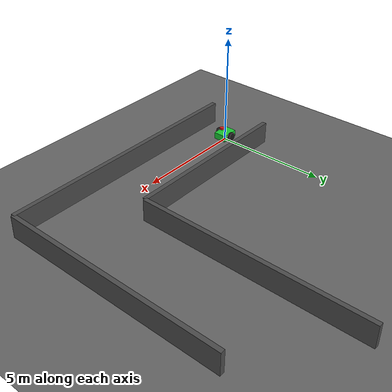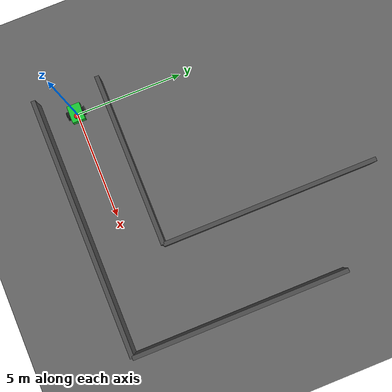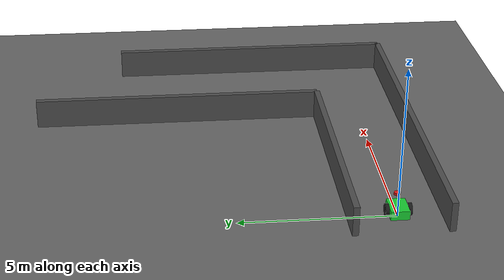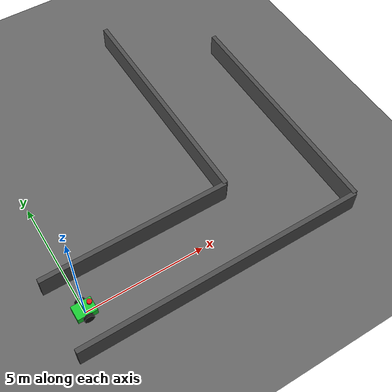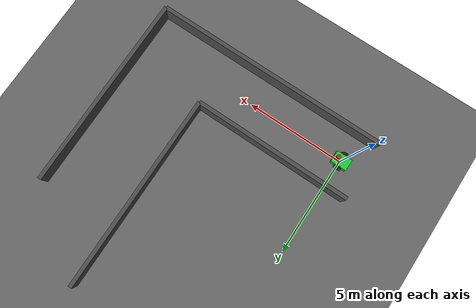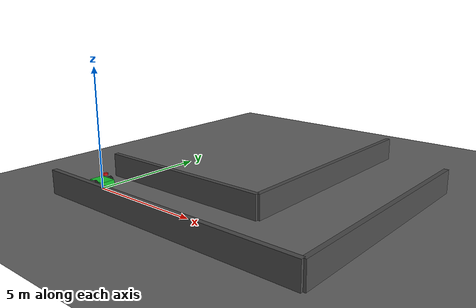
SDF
<?xml version="1.0" ?>
<sdf version="1.9">
  <world name="building_world">
    <!-- PHYSICS & PLUGINS -->
    <physics name="1ms" type="ignored"><max_step_size>0.001</max_step_size><real_time_factor>1.0</real_time_factor></physics>
    <plugin filename="gz-sim-physics-system" name="gz::sim::systems::Physics"/>
    <plugin filename="gz-sim-user-commands-system" name="gz::sim::systems::UserCommands"/>
    <plugin filename="gz-sim-scene-broadcaster-system" name="gz::sim::systems::SceneBroadcaster"/>

    <!-- VB COLOR FIX -->
    <plugin filename="gz-sim-sensors-system" name="gz::sim::systems::Sensors"><render_engine>ogre</render_engine></plugin>

    <!-- LIGHTING & GROUND -->
    <scene><ambient>1.0 1.0 1.0 1</ambient><background>0.1 0.1 0.1 1</background><shadows>false</shadows></scene>
    <light type="directional" name="sun"><diffuse>0.8 0.8 0.8 1</diffuse><specular>0.2 0.2 0.2 1</specular><direction>-0.5 0.5 -1</direction></light>

    <model name="ground_plane">
      <static>true</static>
      <link name="link">
        <collision name="collision"><geometry><plane><normal>0 0 1</normal><size>40 40</size></plane></geometry></collision>
        <visual name="visual"><geometry><plane><normal>0 0 1</normal><size>40 40</size></plane></geometry><material><ambient>0.4 0.4 0.4 1</ambient><diffuse>0.4 0.4 0.4 1</diffuse></material></visual>
      </link>
    </model>

    <!-- CORRIDOR WALLS (Dark Grey) -->
    <!-- Right Wall (Main stretch) -->
    <model name="wall_right">
      <static>true</static><pose>5 -1.5 0.5 0 0 0</pose>
      <link name="link">
        <visual name="v"><geometry><box><size>12 0.2 1</size></box></geometry><material><ambient>0.3 0.3 0.3 1</ambient></material></visual>
        <collision name="c"><geometry><box><size>12 0.2 1</size></box></geometry></collision>
      </link>
    </model>

    <!-- Left Wall (Main stretch) -->
    <model name="wall_left_1">
      <static>true</static><pose>3 1.5 0.5 0 0 0</pose>
      <link name="link">
        <visual name="v"><geometry><box><size>8 0.2 1</size></box></geometry><material><ambient>0.3 0.3 0.3 1</ambient></material></visual>
        <collision name="c"><geometry><box><size>8 0.2 1</size></box></geometry></collision>
      </link>
    </model>

    <!-- Front Wall (Forces the Left Turn) -->
    <model name="wall_front">
      <static>true</static><pose>11 3.5 0.5 0 0 0</pose>
      <link name="link">
        <visual name="v"><geometry><box><size>0.2 10 1</size></box></geometry><material><ambient>0.3 0.3 0.3 1</ambient></material></visual>
        <collision name="c"><geometry><box><size>0.2 10 1</size></box></geometry></collision>
      </link>
    </model>

    <!-- Inner Corner Wall -->
    <model name="wall_left_2">
      <static>true</static><pose>7 6.5 0.5 0 0 0</pose>
      <link name="link">
        <visual name="v"><geometry><box><size>0.2 10 1</size></box></geometry><material><ambient>0.3 0.3 0.3 1</ambient></material></visual>
        <collision name="c"><geometry><box><size>0.2 10 1</size></box></geometry></collision>
      </link>
    </model>

    <!-- ROBOT -->
    <model name="security_robot">
      <pose>0 0 0.25 0 0 0</pose>
      <link name="base_link">
        <inertial><mass>1.0</mass><inertia><ixx>0.035</ixx><iyy>0.078</iyy><izz>0.095</izz></inertia></inertial>
        <collision name="c"><geometry><box><size>0.8 0.6 0.3</size></box></geometry></collision>
        <visual name="v"><geometry><box><size>0.8 0.6 0.3</size></box></geometry><material><ambient>0.1 0.8 0.2 1</ambient><diffuse>0.1 0.8 0.2 1</diffuse></material></visual>
      </link>
      <link name="left_wheel">
        <pose>0 0.36 0.0 0 0 0</pose>
        <inertial><mass>0.15</mass><inertia><ixx>0.003</ixx><iyy>0.003</iyy><izz>0.003</izz></inertia></inertial>
        <collision name="c"><pose>0 0 0 1.5708 0 0</pose><geometry><cylinder><radius>0.20</radius><length>0.12</length></cylinder></geometry><surface><friction><ode><mu>10</mu><mu2>10</mu2></ode></friction></surface></collision>
        <visual name="v"><pose>0 0 0 1.5708 0 0</pose><geometry><cylinder><radius>0.20</radius><length>0.12</length></cylinder></geometry><material><ambient>0.1 0.1 0.1 1</ambient></material></visual>
      </link>
      <link name="right_wheel">
        <pose>0 -0.36 0.0 0 0 0</pose>
        <inertial><mass>0.15</mass><inertia><ixx>0.003</ixx><iyy>0.003</iyy><izz>0.003</izz></inertia></inertial>
        <collision name="c"><pose>0 0 0 1.5708 0 0</pose><geometry><cylinder><radius>0.20</radius><length>0.12</length></cylinder></geometry><surface><friction><ode><mu>10</mu><mu2>10</mu2></ode></friction></surface></collision>
        <visual name="v"><pose>0 0 0 1.5708 0 0</pose><geometry><cylinder><radius>0.20</radius><length>0.12</length></cylinder></geometry><material><ambient>0.1 0.1 0.1 1</ambient></material></visual>
      </link>
      <link name="caster">
        <pose>-0.30 0 -0.12 0 0 0</pose>
        <inertial><mass>0.05</mass><inertia><ixx>0.0002</ixx><iyy>0.0002</iyy><izz>0.0002</izz></inertia></inertial>
        <collision name="c"><geometry><sphere><radius>0.08</radius></sphere></geometry><surface><friction><ode><mu>0.01</mu><mu2>0.01</mu2></ode></friction></surface></collision>
        <visual name="v"><geometry><sphere><radius>0.08</radius></sphere></geometry><material><ambient>0.8 0.8 0.8 1</ambient></material></visual>
      </link>
      <!-- LiDAR -->
      <link name="lidar_link">
        <pose>0.25 0 0.43 0 0 0</pose>
        <visual name="lidar_visual"><geometry><cylinder><radius>0.10</radius><length>0.08</length></cylinder></geometry><material><ambient>0.9 0.1 0.1 1</ambient></material></visual>
        <sensor name="lidar" type="gpu_lidar"><always_on>true</always_on><visualize>true</visualize><update_rate>10</update_rate><topic>/robot/scan</topic>
          <lidar><scan><horizontal><samples>360</samples><resolution>1</resolution><min_angle>-3.14159</min_angle><max_angle>3.14159</max_angle></horizontal></scan><range><min>0.12</min><max>10.0</max><resolution>0.01</resolution></range></lidar>
        </sensor>
      </link>
      <joint name="lwj" type="revolute"><parent>base_link</parent><child>left_wheel</child><axis><xyz>0 1 0</xyz></axis></joint>
      <joint name="rwj" type="revolute"><parent>base_link</parent><child>right_wheel</child><axis><xyz>0 1 0</xyz></axis></joint>
      <joint name="cj" type="fixed"><parent>base_link</parent><child>caster</child></joint>
      <joint name="lidar_joint" type="fixed"><parent>base_link</parent><child>lidar_link</child></joint>
      <plugin filename="gz-sim-diff-drive-system" name="gz::sim::systems::DiffDrive">
        <left_joint>lwj</left_joint><right_joint>rwj</right_joint><wheel_separation>0.72</wheel_separation><wheel_radius>0.20</wheel_radius>
        <odom_publish_frequency>30</odom_publish_frequency><odom_topic>/robot/odometry</odom_topic><topic>/robot/cmd_vel</topic>
      </plugin>
    </model>
  </world>
</sdf>
